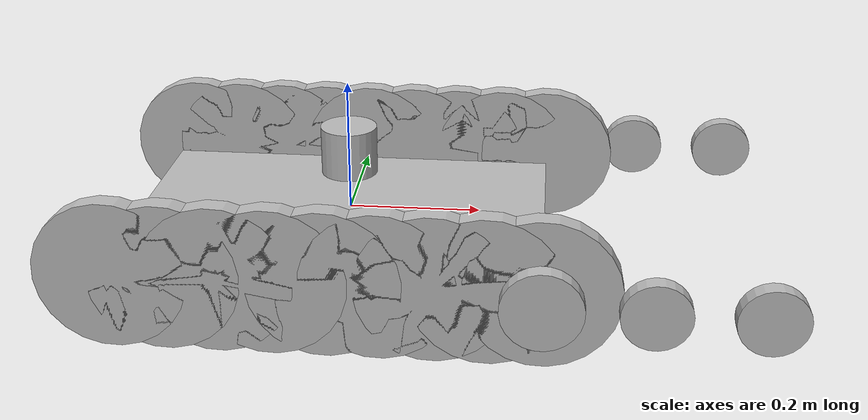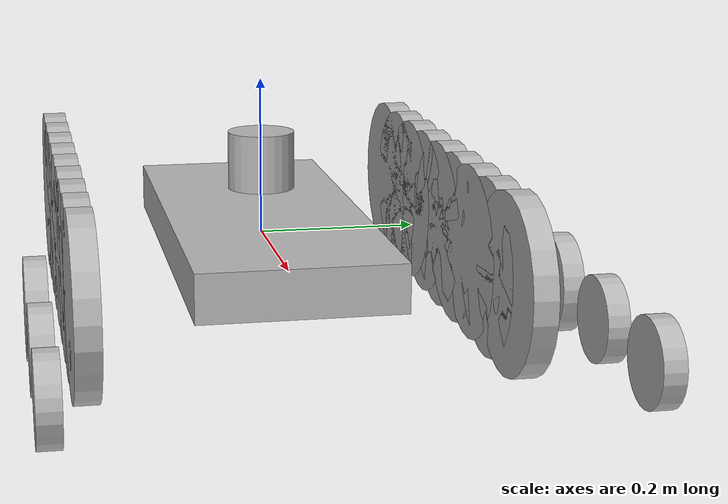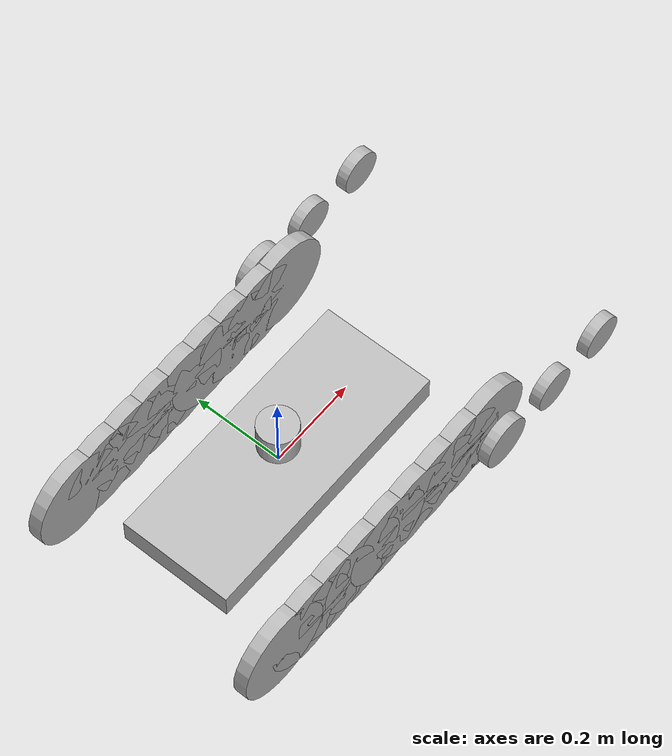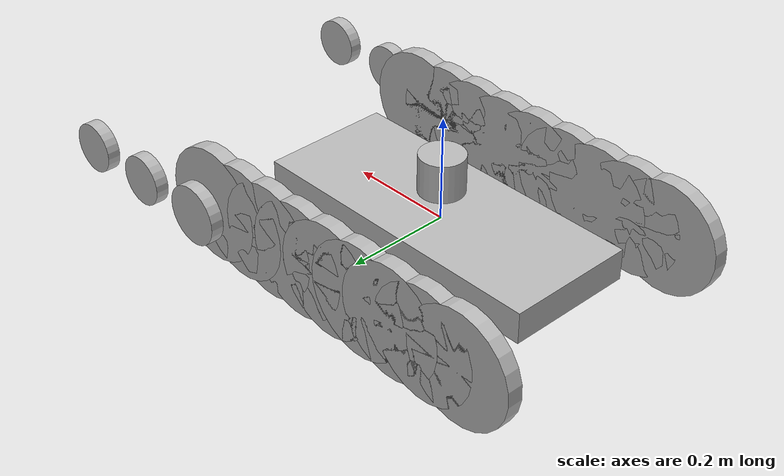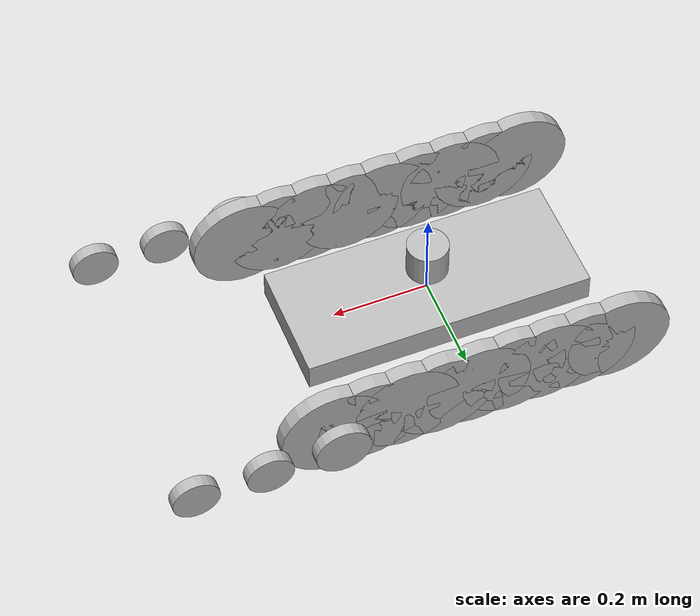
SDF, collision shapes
<?xml version="1.0" ?>
<sdf version='1.6'>
  <model name='tracked_robot'>
    <link name='Body'>
      <pose frame=''>0 0 0 0 -0 0</pose>
      <inertial>
        <pose frame=''>-0.004956 -0 0.002013 0 -0 0</pose>
        <mass>14.616</mass>
        <inertia>
          <ixx>0.151133</ixx>
          <ixy>3.69305e-18</ixy>
          <ixz>0.00426863</ixz>
          <iyy>0.497899</iyy>
          <iyz>-2.49612e-17</iyz>
          <izz>0.632236</izz>
        </inertia>
      </inertial>
      <collision name='Body_collision'>
        <pose frame=''>0 0 0 0 -0 0</pose>
        <geometry>
	  <box>
	    <size>0.6 0.25 0.06</size>
	  </box>
        </geometry>
      </collision>
      <visual name='Body_visual'>
        <pose frame=''>-0.2 0 0 1.5708 -0 0</pose>
        <geometry>
          <mesh>
            <scale>1 1 1</scale>
            <uri>model://tracked_robot/meshes/base_link.STL</uri>
          </mesh>
        </geometry>
      </visual>
    </link>
    <link name="vlp">
        <pose>0 0 0.095455 0 0 0</pose>
        <inertial>
            <mass>0.1</mass>
            <inertia>
                <ixx>0.000090623</ixx>
                <iyy>0.000090623</iyy>
                <izz>0.000091036</izz>
                <ixy>0</ixy>
                <ixz>0</ixz>
                <iyz>0</iyz>
            </inertia>
        </inertial>
        <collision name="top_collision">
            <geometry>
                <cylinder>
                    <!-- Radius and length provided by Velodyne -->
                    <radius>0.04267</radius>
                    <length>0.07357</length>
                </cylinder>
            </geometry>
        </collision>
        <!-- The visual is mostly a copy of the collision -->
        <visual name="top_visual">
            <geometry>
                <cylinder>
                    <radius>0.04267</radius>
                    <length>0.07357</length>
                </cylinder>
            </geometry>
        </visual>
        <!-- Add a ray sensor, and give it a name -->
        <sensor type="ray" name="sensor">
            <pose>0 0 -0.004645 0 0 0</pose>
            <visualize>false</visualize>
            <update_rate>10</update_rate>
            <ray>
                <scan>
                    <horizontal>
                        <samples>1875</samples>
                        <resolution>1</resolution>
                        <min_angle>-3.14159</min_angle>
                        <max_angle>3.14159</max_angle>
                    </horizontal>
                    <vertical>
                        <samples>16</samples>
                        <resolution>1</resolution>
                        <min_angle>-0.261799</min_angle>
                        <max_angle> 0.261799</max_angle>
                    </vertical>
                </scan>
                <range>
                    <min>0.05</min>
                    <max>100</max>
                    <resolution>0.001</resolution>
                </range>
                <noise>
                    <type>gaussian</type>
                    <mean>0</mean>
                    <stddev>0</stddev>
                </noise>
            </ray>
        </sensor>
    </link>
    <joint name="fixedJoint_vlp" type="fixed">
      <parent>Body</parent>
      <child>vlp</child>
      <axis>
	<xyz>0 0 1</xyz>
      </axis>
    </joint>

    <link name="Track_L_1">
      <pose frame=''>-0.3 0.25 0 -1.5707963267948966 -0.08726646259971647 0</pose>
      <inertial>
	<mass>0.2</mass>
	<inertia>
	  <ixx>0.002</ixx>
	  <iyy>0.002</iyy>
	  <izz>0.004</izz>
	  <ixy>0</ixy>
	  <ixz>0</ixz>
	  <iyz>0</iyz>
	</inertia>
      </inertial>
      <collision name="collision">
	<geometry>
	  <cylinder>
	    <radius>0.11</radius>
	    <length>0.03</length>
	  </cylinder>
	</geometry>
      </collision>
    </link>
    <joint name="joint_Track_L_1" type="revolute">
      <parent>Body</parent>
      <child>Track_L_1</child>
      <axis>
	<xyz>0 0 1</xyz>
      </axis>
    </joint>

    <link name="Track_L_2">
      <pose frame=''>-0.225 0.25 0 -1.5707963267948966 -0.08726646259971647 0</pose>
      <inertial>
	<mass>0.2</mass>
	<inertia>
	  <ixx>0.002</ixx>
	  <iyy>0.002</iyy>
	  <izz>0.004</izz>
	  <ixy>0</ixy>
	  <ixz>0</ixz>
	  <iyz>0</iyz>
	</inertia>
      </inertial>
      <collision name="collision">
	<geometry>
	  <cylinder>
	    <radius>0.11</radius>
	    <length>0.03</length>
	  </cylinder>
	</geometry>
      </collision>
    </link>
    <joint name="joint_Track_L_2" type="revolute">
      <parent>Body</parent>
      <child>Track_L_2</child>
      <axis>
	<xyz>0 0 1</xyz>
      </axis>
    </joint>

    <link name="Track_L_3">
      <pose frame=''>-0.15 0.25 0 -1.5707963267948966 -0.08726646259971647 0</pose>
      <inertial>
	<mass>0.2</mass>
	<inertia>
	  <ixx>0.002</ixx>
	  <iyy>0.002</iyy>
	  <izz>0.004</izz>
	  <ixy>0</ixy>
	  <ixz>0</ixz>
	  <iyz>0</iyz>
	</inertia>
      </inertial>
      <collision name="collision">
	<geometry>
	  <cylinder>
	    <radius>0.11</radius>
	    <length>0.03</length>
	  </cylinder>
	</geometry>
      </collision>
    </link>
    <joint name="joint_Track_L_3" type="revolute">
      <parent>Body</parent>
      <child>Track_L_3</child>
      <axis>
	<xyz>0 0 1</xyz>
      </axis>
    </joint>

    <link name="Track_L_4">
      <pose frame=''>-0.075 0.25 0 -1.5707963267948966 -0.08726646259971647 0</pose>
      <inertial>
	<mass>0.2</mass>
	<inertia>
	  <ixx>0.002</ixx>
	  <iyy>0.002</iyy>
	  <izz>0.004</izz>
	  <ixy>0</ixy>
	  <ixz>0</ixz>
	  <iyz>0</iyz>
	</inertia>
      </inertial>
      <collision name="collision">
	<geometry>
	  <cylinder>
	    <radius>0.11</radius>
	    <length>0.03</length>
	  </cylinder>
	</geometry>
      </collision>
    </link>
    <joint name="joint_Track_L_4" type="revolute">
      <parent>Body</parent>
      <child>Track_L_4</child>
      <axis>
	<xyz>0 0 1</xyz>
      </axis>
    </joint>

    <link name="Track_L_5">
      <pose frame=''>0 0.25 0 -1.5707963267948966 -0.08726646259971647 0</pose>
      <inertial>
	<mass>0.2</mass>
	<inertia>
	  <ixx>0.002</ixx>
	  <iyy>0.002</iyy>
	  <izz>0.004</izz>
	  <ixy>0</ixy>
	  <ixz>0</ixz>
	  <iyz>0</iyz>
	</inertia>
      </inertial>
      <collision name="collision">
	<geometry>
	  <cylinder>
	    <radius>0.11</radius>
	    <length>0.03</length>
	  </cylinder>
	</geometry>
      </collision>
    </link>
    <joint name="joint_Track_L_5" type="revolute">
      <parent>Body</parent>
      <child>Track_L_5</child>
      <axis>
	<xyz>0 0 1</xyz>
      </axis>
    </joint>

    <link name="Track_L_6">
      <pose frame=''>0.075 0.25 0 -1.5707963267948966 -0.08726646259971647 0</pose>
      <inertial>
	<mass>0.2</mass>
	<inertia>
	  <ixx>0.002</ixx>
	  <iyy>0.002</iyy>
	  <izz>0.004</izz>
	  <ixy>0</ixy>
	  <ixz>0</ixz>
	  <iyz>0</iyz>
	</inertia>
      </inertial>
      <collision name="collision">
	<geometry>
	  <cylinder>
	    <radius>0.11</radius>
	    <length>0.03</length>
	  </cylinder>
	</geometry>
      </collision>
    </link>
    <joint name="joint_Track_L_6" type="revolute">
      <parent>Body</parent>
      <child>Track_L_6</child>
      <axis>
	<xyz>0 0 1</xyz>
      </axis>
    </joint>

    <link name="Track_L_7">
      <pose frame=''>0.15 0.25 0 -1.5707963267948966 -0.08726646259971647 0</pose>
      <inertial>
	<mass>0.2</mass>
	<inertia>
	  <ixx>0.002</ixx>
	  <iyy>0.002</iyy>
	  <izz>0.004</izz>
	  <ixy>0</ixy>
	  <ixz>0</ixz>
	  <iyz>0</iyz>
	</inertia>
      </inertial>
      <collision name="collision">
	<geometry>
	  <cylinder>
	    <radius>0.11</radius>
	    <length>0.03</length>
	  </cylinder>
	</geometry>
      </collision>
    </link>
    <joint name="joint_Track_L_7" type="revolute">
      <parent>Body</parent>
      <child>Track_L_7</child>
      <axis>
	<xyz>0 0 1</xyz>
      </axis>
    </joint>

    <link name="Track_L_8">
      <pose frame=''>0.225 0.25 0 -1.5707963267948966 -0.08726646259971647 0</pose>
      <inertial>
	<mass>0.2</mass>
	<inertia>
	  <ixx>0.002</ixx>
	  <iyy>0.002</iyy>
	  <izz>0.004</izz>
	  <ixy>0</ixy>
	  <ixz>0</ixz>
	  <iyz>0</iyz>
	</inertia>
      </inertial>
      <collision name="collision">
	<geometry>
	  <cylinder>
	    <radius>0.11</radius>
	    <length>0.03</length>
	  </cylinder>
	</geometry>
      </collision>
    </link>
    <joint name="joint_Track_L_8" type="revolute">
      <parent>Body</parent>
      <child>Track_L_8</child>
      <axis>
	<xyz>0 0 1</xyz>
      </axis>
    </joint>

    <link name="Track_L_9">
      <pose frame=''>0.3 0.25 0 -1.5707963267948966 -0.08726646259971647 0</pose>
      <inertial>
	<mass>0.2</mass>
	<inertia>
	  <ixx>0.002</ixx>
	  <iyy>0.002</iyy>
	  <izz>0.004</izz>
	  <ixy>0</ixy>
	  <ixz>0</ixz>
	  <iyz>0</iyz>
	</inertia>
      </inertial>
      <collision name="collision">
	<geometry>
	  <cylinder>
	    <radius>0.11</radius>
	    <length>0.03</length>
	  </cylinder>
	</geometry>
      </collision>
    </link>
    <joint name="joint_Track_L_9" type="revolute">
      <parent>Body</parent>
      <child>Track_L_9</child>
      <axis>
	<xyz>0 0 1</xyz>
      </axis>
    </joint>

    <link name="Track_R_1">
      <pose frame=''>-0.3 -0.25 0 -1.5707963267948966 -0.08726646259971647 0</pose>
      <inertial>
	<mass>0.2</mass>
	<inertia>
	  <ixx>0.002</ixx>
	  <iyy>0.002</iyy>
	  <izz>0.004</izz>
	  <ixy>0</ixy>
	  <ixz>0</ixz>
	  <iyz>0</iyz>
	</inertia>
      </inertial>
      <collision name="collision">
	<geometry>
	  <cylinder>
	    <radius>0.11</radius>
	    <length>0.03</length>
	  </cylinder>
	</geometry>
      </collision>
    </link>
    <joint name="joint_Track_R_1" type="revolute">
      <parent>Body</parent>
      <child>Track_R_1</child>
      <axis>
	<xyz>0 0 1</xyz>
      </axis>
    </joint>

    <link name="Track_R_2">
      <pose frame=''>-0.225 -0.25 0 -1.5707963267948966 -0.08726646259971647 0</pose>
      <inertial>
	<mass>0.2</mass>
	<inertia>
	  <ixx>0.002</ixx>
	  <iyy>0.002</iyy>
	  <izz>0.004</izz>
	  <ixy>0</ixy>
	  <ixz>0</ixz>
	  <iyz>0</iyz>
	</inertia>
      </inertial>
      <collision name="collision">
	<geometry>
	  <cylinder>
	    <radius>0.11</radius>
	    <length>0.03</length>
	  </cylinder>
	</geometry>
      </collision>
    </link>
    <joint name="joint_Track_R_2" type="revolute">
      <parent>Body</parent>
      <child>Track_R_2</child>
      <axis>
	<xyz>0 0 1</xyz>
      </axis>
    </joint>

    <link name="Track_R_3">
      <pose frame=''>-0.15 -0.25 0 -1.5707963267948966 -0.08726646259971647 0</pose>
      <inertial>
	<mass>0.2</mass>
	<inertia>
	  <ixx>0.002</ixx>
	  <iyy>0.002</iyy>
	  <izz>0.004</izz>
	  <ixy>0</ixy>
	  <ixz>0</ixz>
	  <iyz>0</iyz>
	</inertia>
      </inertial>
      <collision name="collision">
	<geometry>
	  <cylinder>
	    <radius>0.11</radius>
	    <length>0.03</length>
	  </cylinder>
	</geometry>
      </collision>
    </link>
    <joint name="joint_Track_R_3" type="revolute">
      <parent>Body</parent>
      <child>Track_R_3</child>
      <axis>
	<xyz>0 0 1</xyz>
      </axis>
    </joint>

    <link name="Track_R_4">
      <pose frame=''>-0.075 -0.25 0 -1.5707963267948966 -0.08726646259971647 0</pose>
      <inertial>
	<mass>0.2</mass>
	<inertia>
	  <ixx>0.002</ixx>
	  <iyy>0.002</iyy>
	  <izz>0.004</izz>
	  <ixy>0</ixy>
	  <ixz>0</ixz>
	  <iyz>0</iyz>
	</inertia>
      </inertial>
      <collision name="collision">
	<geometry>
	  <cylinder>
	    <radius>0.11</radius>
	    <length>0.03</length>
	  </cylinder>
	</geometry>
      </collision>
    </link>
    <joint name="joint_Track_R_4" type="revolute">
      <parent>Body</parent>
      <child>Track_R_4</child>
      <axis>
	<xyz>0 0 1</xyz>
      </axis>
    </joint>

    <link name="Track_R_5">
      <pose frame=''>0 -0.25 0 -1.5707963267948966 -0.08726646259971647 0</pose>
      <inertial>
	<mass>0.2</mass>
	<inertia>
	  <ixx>0.002</ixx>
	  <iyy>0.002</iyy>
	  <izz>0.004</izz>
	  <ixy>0</ixy>
	  <ixz>0</ixz>
	  <iyz>0</iyz>
	</inertia>
      </inertial>
      <collision name="collision">
	<geometry>
	  <cylinder>
	    <radius>0.11</radius>
	    <length>0.03</length>
	  </cylinder>
	</geometry>
      </collision>
    </link>
    <joint name="joint_Track_R_5" type="revolute">
      <parent>Body</parent>
      <child>Track_R_5</child>
      <axis>
	<xyz>0 0 1</xyz>
      </axis>
    </joint>

    <link name="Track_R_6">
      <pose frame=''>0.075 -0.25 0 -1.5707963267948966 -0.08726646259971647 0</pose>
      <inertial>
	<mass>0.2</mass>
	<inertia>
	  <ixx>0.002</ixx>
	  <iyy>0.002</iyy>
	  <izz>0.004</izz>
	  <ixy>0</ixy>
	  <ixz>0</ixz>
	  <iyz>0</iyz>
	</inertia>
      </inertial>
      <collision name="collision">
	<geometry>
	  <cylinder>
	    <radius>0.11</radius>
	    <length>0.03</length>
	  </cylinder>
	</geometry>
      </collision>
    </link>
    <joint name="joint_Track_R_6" type="revolute">
      <parent>Body</parent>
      <child>Track_R_6</child>
      <axis>
	<xyz>0 0 1</xyz>
      </axis>
    </joint>

    <link name="Track_R_7">
      <pose frame=''>0.15 -0.25 0 -1.5707963267948966 -0.08726646259971647 0</pose>
      <inertial>
	<mass>0.2</mass>
	<inertia>
	  <ixx>0.002</ixx>
	  <iyy>0.002</iyy>
	  <izz>0.004</izz>
	  <ixy>0</ixy>
	  <ixz>0</ixz>
	  <iyz>0</iyz>
	</inertia>
      </inertial>
      <collision name="collision">
	<geometry>
	  <cylinder>
	    <radius>0.11</radius>
	    <length>0.03</length>
	  </cylinder>
	</geometry>
      </collision>
    </link>
    <joint name="joint_Track_R_7" type="revolute">
      <parent>Body</parent>
      <child>Track_R_7</child>
      <axis>
	<xyz>0 0 1</xyz>
      </axis>
    </joint>

    <link name="Track_R_8">
      <pose frame=''>0.225 -0.25 0 -1.5707963267948966 -0.08726646259971647 0</pose>
      <inertial>
	<mass>0.2</mass>
	<inertia>
	  <ixx>0.002</ixx>
	  <iyy>0.002</iyy>
	  <izz>0.004</izz>
	  <ixy>0</ixy>
	  <ixz>0</ixz>
	  <iyz>0</iyz>
	</inertia>
      </inertial>
      <collision name="collision">
	<geometry>
	  <cylinder>
	    <radius>0.11</radius>
	    <length>0.03</length>
	  </cylinder>
	</geometry>
      </collision>
    </link>
    <joint name="joint_Track_R_8" type="revolute">
      <parent>Body</parent>
      <child>Track_R_8</child>
      <axis>
	<xyz>0 0 1</xyz>
      </axis>
    </joint>

    <link name="Track_R_9">
      <pose frame=''>0.3 -0.25 0 -1.5707963267948966 -0.08726646259971647 0</pose>
      <inertial>
	<mass>0.2</mass>
	<inertia>
	  <ixx>0.002</ixx>
	  <iyy>0.002</iyy>
	  <izz>0.004</izz>
	  <ixy>0</ixy>
	  <ixz>0</ixz>
	  <iyz>0</iyz>
	</inertia>
      </inertial>
      <collision name="collision">
	<geometry>
	  <cylinder>
	    <radius>0.11</radius>
	    <length>0.03</length>
	  </cylinder>
	</geometry>
      </collision>
    </link>
    <joint name="joint_Track_R_9" type="revolute">
      <parent>Body</parent>
      <child>Track_R_9</child>
      <axis>
	<xyz>0 0 1</xyz>
      </axis>
    </joint>

    <link name='Flipper_L'>
      <pose frame=''>0.3 0.165 0 0 -0 0</pose>
      <inertial>
        <pose frame=''>0.12763 0.012498 0 0 -0 0</pose>
        <mass>0.75702</mass>
        <inertia>
          <ixx>0.00048991</ixx>
          <ixy>-1.7332e-07</ixy>
          <ixz>3.6502e-08</ixz>
          <iyy>0.008777</iyy>
          <iyz>-3.2985e-09</iyz>
          <izz>0.0083653</izz>
        </inertia>
      </inertial>
      <visual name='Flipper_L_visual'>
        <pose frame=''>0 -0.5 0 0 -0 0</pose>
        <geometry>
          <mesh>
            <scale>1 1 1</scale>
            <uri>model://tracked_robot/meshes/arm_Link.STL</uri>
          </mesh>
        </geometry>
      </visual>
    </link>
    <joint name='Joint_L' type='revolute'>
      <child>Flipper_L</child>
      <parent>Body</parent>
      <axis>
        <xyz>0 1 0</xyz>
        <limit>
          <lower>-1e+16</lower>
          <upper>1e+16</upper>
        </limit>
        <dynamics>
          <spring_reference>0</spring_reference>
          <spring_stiffness>0</spring_stiffness>
        </dynamics>
        <use_parent_model_frame>1</use_parent_model_frame>
      </axis>
    </joint>
    <link name='Flipper_R'>
      <pose frame=''>0.3 -0.165 0 0 -0 0</pose>
      <inertial>
        <pose frame=''>0.127654 -0.012496 -1e-06 0 -0 0</pose>
        <mass>0.756903</mass>
        <inertia>
          <ixx>0.000489882</ixx>
          <ixy>3.58229e-07</ixy>
          <ixz>-1.00637e-07</ixz>
          <iyy>0.00877497</iyy>
          <iyz>-9.5823e-09</iyz>
          <izz>0.00836334</izz>
        </inertia>
      </inertial>
    </link>
    <joint name='Joint_R' type='revolute'>
      <child>Flipper_R</child>
      <parent>Body</parent>
      <axis>
        <xyz>0 -1 0</xyz>
        <limit>
          <lower>-1e+16</lower>
          <upper>1e+16</upper>
        </limit>
        <dynamics>
          <spring_reference>0</spring_reference>
          <spring_stiffness>0</spring_stiffness>
        </dynamics>
        <use_parent_model_frame>1</use_parent_model_frame>
      </axis>
    </joint>

    <link name="Flipper_L_1">
      <pose frame=''>0.3 0.3 0 -1.5707963267948966 -0.08726646259971647 0</pose>
      <inertial>
	<mass>0.2</mass>
	<inertia>
	  <ixx>0.002</ixx>
	  <iyy>0.002</iyy>
	  <izz>0.004</izz>
	  <ixy>0</ixy>
	  <ixz>0</ixz>
	  <iyz>0</iyz>
	</inertia>
      </inertial>
      <collision name="collision">
	<geometry>
	  <cylinder>
	    <radius>0.0575</radius>
	    <length>0.025</length>
	  </cylinder>
	</geometry>
      </collision>
    </link>
    <joint name="joint_Flipper_L_1" type="revolute">
      <parent>Flipper_L</parent>
      <child>Flipper_L_1</child>
      <axis>
	<xyz>0 0 1</xyz>
      </axis>
    </joint>

    <link name="Flipper_L_2">
      <pose frame=''>0.45 0.3 0 -1.5707963267948966 -0.08726646259971647 0</pose>
      <inertial>
	<mass>0.2</mass>
	<inertia>
	  <ixx>0.002</ixx>
	  <iyy>0.002</iyy>
	  <izz>0.004</izz>
	  <ixy>0</ixy>
	  <ixz>0</ixz>
	  <iyz>0</iyz>
	</inertia>
      </inertial>
      <collision name="collision">
	<geometry>
	  <cylinder>
	    <radius>0.04825</radius>
	    <length>0.025</length>
	  </cylinder>
	</geometry>
      </collision>
    </link>
    <joint name="joint_Flipper_L_2" type="revolute">
      <parent>Flipper_L</parent>
      <child>Flipper_L_2</child>
      <axis>
	<xyz>0 0 1</xyz>
      </axis>
    </joint>

    <link name="Flipper_L_3">
      <pose frame=''>0.6 0.3 0 -1.5707963267948966 -0.08726646259971647 0</pose>
      <inertial>
	<mass>0.2</mass>
	<inertia>
	  <ixx>0.002</ixx>
	  <iyy>0.002</iyy>
	  <izz>0.004</izz>
	  <ixy>0</ixy>
	  <ixz>0</ixz>
	  <iyz>0</iyz>
	</inertia>
      </inertial>
      <collision name="collision">
	<geometry>
	  <cylinder>
	    <radius>0.04825</radius>
	    <length>0.025</length>
	  </cylinder>
	</geometry>
      </collision>
    </link>
    <joint name="joint_Flipper_L_3" type="revolute">
      <parent>Flipper_L</parent>
      <child>Flipper_L_3</child>
      <axis>
	<xyz>0 0 1</xyz>
      </axis>
    </joint>

    <link name="Flipper_R_1">
      <pose frame=''>0.3 -0.3 0 -1.5707963267948966 -0.08726646259971647 0</pose>
      <inertial>
	<mass>0.2</mass>
	<inertia>
	  <ixx>0.002</ixx>
	  <iyy>0.002</iyy>
	  <izz>0.004</izz>
	  <ixy>0</ixy>
	  <ixz>0</ixz>
	  <iyz>0</iyz>
	</inertia>
      </inertial>
      <collision name="collision">
	<geometry>
	  <cylinder>
	    <radius>0.0575</radius>
	    <length>0.025</length>
	  </cylinder>
	</geometry>
      </collision>
    </link>
    <joint name="joint_Flipper_R_1" type="revolute">
      <parent>Flipper_R</parent>
      <child>Flipper_R_1</child>
      <axis>
	<xyz>0 0 1</xyz>
      </axis>
    </joint>

    <link name="Flipper_R_2">
      <pose frame=''>0.45 -0.3 0 -1.5707963267948966 -0.08726646259971647 0</pose>
      <inertial>
	<mass>0.2</mass>
	<inertia>
	  <ixx>0.002</ixx>
	  <iyy>0.002</iyy>
	  <izz>0.004</izz>
	  <ixy>0</ixy>
	  <ixz>0</ixz>
	  <iyz>0</iyz>
	</inertia>
      </inertial>
      <collision name="collision">
	<geometry>
	  <cylinder>
	    <radius>0.04825</radius>
	    <length>0.025</length>
	  </cylinder>
	</geometry>
      </collision>
    </link>
    <joint name="joint_Flipper_R_2" type="revolute">
      <parent>Flipper_R</parent>
      <child>Flipper_R_2</child>
      <axis>
	<xyz>0 0 1</xyz>
      </axis>
    </joint>

    <link name="Flipper_R_3">
      <pose frame=''>0.6 -0.3 0 -1.5707963267948966 -0.08726646259971647 0</pose>
      <inertial>
	<mass>0.2</mass>
	<inertia>
	  <ixx>0.002</ixx>
	  <iyy>0.002</iyy>
	  <izz>0.004</izz>
	  <ixy>0</ixy>
	  <ixz>0</ixz>
	  <iyz>0</iyz>
	</inertia>
      </inertial>
      <collision name="collision">
	<geometry>
	  <cylinder>
	    <radius>0.04825</radius>
	    <length>0.025</length>
	  </cylinder>
	</geometry>
      </collision>
    </link>
    <joint name="joint_Flipper_R_3" type="revolute">
      <parent>Flipper_R</parent>
      <child>Flipper_R_3</child>
      <axis>
	<xyz>0 0 1</xyz>
      </axis>
    </joint>

  </model>
</sdf>
